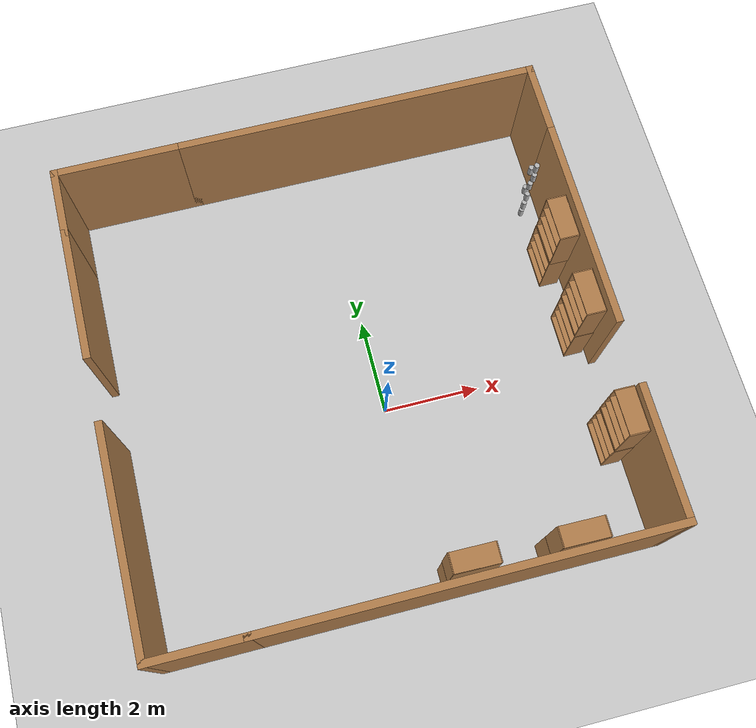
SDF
<sdf version="1.6">
 <world name="default">
  <model name="ground_plane">
   <static>1</static>
   <link name="link">
    <collision name="collision">
     <geometry><plane><normal>0 0 1</normal><size>100 100</size></plane></geometry>
     <surface><friction><ode><mu>100</mu><mu2>50</mu2></ode></friction></surface>
    </collision>
    <visual name="visual">
     <cast_shadows>0</cast_shadows>
     <geometry><plane><normal>0 0 1</normal><size>100 100</size></plane></geometry>
     <material>
      <script><uri>file://media/materials/scripts/gazebo.material</uri><name>Gazebo/Grey</name></script>
     </material>
    </visual>
   </link>
  </model>
  <model name="shopping_mart_box">
   <pose>-0.44063 0.87202 0 0 -0 0</pose>
   <link name="Wall_11">
    <collision name="Wall_11_Collision">
     <geometry><box><size>2 0.15 2.5</size></box></geometry>
     <pose>0 0 1.25 0 -0 0</pose>
    </collision>
    <visual name="Wall_11_Visual">
     <pose>0 0 1.25 0 -0 0</pose>
     <geometry><box><size>2 0.15 2.5</size></box></geometry>
     <material>
      <script><uri>file://media/materials/scripts/gazebo.material</uri><name>Gazebo/Wood</name></script>
      <ambient>1 1 1 1</ambient>
     </material>
    </visual>
    <pose>-4.05 -4.85 0 0 -0 3.14159</pose>
   </link>
   <link name="Wall_12">
    <collision name="Wall_12_Collision">
     <geometry><box><size>4.5 0.15 2.5</size></box></geometry>
     <pose>0 0 1.25 0 -0 0</pose>
    </collision>
    <visual name="Wall_12_Visual">
     <pose>0 0 1.25 0 -0 0</pose>
     <geometry><box><size>4.5 0.15 2.5</size></box></geometry>
     <material>
      <script><uri>file://media/materials/scripts/gazebo.material</uri><name>Gazebo/Wood</name></script>
      <ambient>1 1 1 1</ambient>
     </material>
    </visual>
    <pose>-4.975 -2.675 0 0 -0 1.5708</pose>
   </link>
   <link name="Wall_15">
    <collision name="Wall_15_Collision">
     <geometry><box><size>2.75 0.15 2.5</size></box></geometry>
     <pose>0 0 1.25 0 -0 0</pose>
    </collision>
    <visual name="Wall_15_Visual">
     <pose>0 0 1.25 0 -0 0</pose>
     <geometry><box><size>2.75 0.15 2.5</size></box></geometry>
     <material>
      <script><uri>file://media/materials/scripts/gazebo.material</uri><name>Gazebo/Wood</name></script>
      <ambient>1 1 1 1</ambient>
     </material>
    </visual>
    <pose>-4.975 2.2 0 0 0 -1.5708</pose>
   </link>
   <link name="Wall_17">
    <collision name="Wall_17_Collision">
     <geometry><box><size>1.5 0.15 2.5</size></box></geometry>
     <pose>0 0 1.25 0 -0 0</pose>
    </collision>
    <visual name="Wall_17_Visual">
     <pose>0 0 1.25 0 -0 0</pose>
     <geometry><box><size>1.5 0.15 2.5</size></box></geometry>
     <material>
      <script><uri>file://media/materials/scripts/gazebo.material</uri><name>Gazebo/Wood</name></script>
      <ambient>1 1 1 1</ambient>
     </material>
    </visual>
    <pose>-4.975 4.175 0 0 -0 1.5708</pose>
   </link>
   <link name="Wall_21">
    <collision name="Wall_21_Collision">
     <geometry><box><size>2.75 0.15 2.5</size></box></geometry>
     <pose>0 0 1.25 0 -0 0</pose>
    </collision>
    <visual name="Wall_21_Visual">
     <pose>0 0 1.25 0 -0 0</pose>
     <geometry><box><size>2.75 0.15 2.5</size></box></geometry>
     <material>
      <script><uri>file://media/materials/scripts/gazebo.material</uri><name>Gazebo/Wood</name></script>
      <ambient>1 1 1 1</ambient>
     </material>
    </visual>
    <pose>-3.675 4.85 0 0 -0 0</pose>
   </link>
   <link name="Wall_22">
    <collision name="Wall_22_Collision">
     <geometry><box><size>7.5 0.15 2.5</size></box></geometry>
     <pose>0 0 1.25 0 -0 0</pose>
    </collision>
    <visual name="Wall_22_Visual">
     <pose>0 0 1.25 0 -0 0</pose>
     <geometry><box><size>7.5 0.15 2.5</size></box></geometry>
     <material>
      <script><uri>file://media/materials/scripts/gazebo.material</uri><name>Gazebo/Wood</name></script>
      <ambient>1 1 1 1</ambient>
     </material>
    </visual>
    <pose>1.3 4.85 0 0 -0 0</pose>
   </link>
   <link name="Wall_23">
    <collision name="Wall_23_Collision">
     <geometry><box><size>1.5 0.15 2.5</size></box></geometry>
     <pose>0 0 1.25 0 -0 0</pose>
    </collision>
    <visual name="Wall_23_Visual">
     <pose>0 0 1.25 0 -0 0</pose>
     <geometry><box><size>1.5 0.15 2.5</size></box></geometry>
     <material>
      <script><uri>file://media/materials/scripts/gazebo.material</uri><name>Gazebo/Wood</name></script>
      <ambient>1 1 1 1</ambient>
     </material>
    </visual>
    <pose>4.975 4.175 0 0 0 -1.5708</pose>
   </link>
   <link name="Wall_29">
    <collision name="Wall_29_Collision">
     <geometry><box><size>4.5 0.15 2.5</size></box></geometry>
     <pose>0 0 1.25 0 -0 0</pose>
    </collision>
    <visual name="Wall_29_Visual">
     <pose>0 0 1.25 0 -0 0</pose>
     <geometry><box><size>4.5 0.15 2.5</size></box></geometry>
     <material>
      <script><uri>file://media/materials/scripts/gazebo.material</uri><name>Gazebo/Wood</name></script>
      <ambient>1 1 1 1</ambient>
     </material>
    </visual>
    <pose>4.975 1.325 0 0 0 -1.5708</pose>
   </link>
   <link name="Wall_31">
    <collision name="Wall_31_Collision">
     <geometry><box><size>2.75 0.15 2.5</size></box></geometry>
     <pose>0 0 1.25 0 -0 0</pose>
    </collision>
    <visual name="Wall_31_Visual">
     <pose>0 0 1.25 0 -0 0</pose>
     <geometry><box><size>2.75 0.15 2.5</size></box></geometry>
     <material>
      <script><uri>file://media/materials/scripts/gazebo.material</uri><name>Gazebo/Wood</name></script>
      <ambient>1 1 1 1</ambient>
     </material>
    </visual>
    <pose>4.975 -3.55 0 0 -0 1.5708</pose>
   </link>
   <link name="Wall_6">
    <collision name="Wall_6_Collision">
     <geometry><box><size>8.25 0.15 2.5</size></box></geometry>
     <pose>0 0 1.25 0 -0 0</pose>
    </collision>
    <visual name="Wall_6_Visual">
     <pose>0 0 1.25 0 -0 0</pose>
     <geometry><box><size>8.25 0.15 2.5</size></box></geometry>
     <material>
      <script><uri>file://media/materials/scripts/gazebo.material</uri><name>Gazebo/Wood</name></script>
      <ambient>1 1 1 1</ambient>
     </material>
    </visual>
    <pose>0.925 -4.85 0 0 -0 0</pose>
   </link>
   <static>1</static>
  </model>
  <model name="bookshelf_4_clone_0">
   <static>1</static>
   <link name="link">
    <inertial><mass>1</mass></inertial>
    <collision name="back">
     <pose>0 0.005 0.6 0 -0 0</pose>
     <geometry><box><size>0.9 0.01 1.2</size></box></geometry>
    </collision>
    <visual name="visual1">
     <pose>0 0.005 0.6 0 -0 0</pose>
     <geometry><box><size>0.9 0.01 1.2</size></box></geometry>
     <material>
      <script><uri>file://media/materials/scripts/gazebo.material</uri><name>Gazebo/Wood</name></script>
     </material>
    </visual>
    <collision name="left_side">
     <pose>0.45 -0.195 0.6 0 -0 0</pose>
     <geometry><box><size>0.02 0.4 1.2</size></box></geometry>
    </collision>
    <visual name="visual2">
     <pose>0.45 -0.195 0.6 0 -0 0</pose>
     <geometry><box><size>0.02 0.4 1.2</size></box></geometry>
     <material>
      <script><uri>file://media/materials/scripts/gazebo.material</uri><name>Gazebo/Wood</name></script>
     </material>
    </visual>
    <collision name="right_side">
     <pose>-0.45 -0.195 0.6 0 -0 0</pose>
     <geometry><box><size>0.02 0.4 1.2</size></box></geometry>
    </collision>
    <visual name="visual3">
     <pose>-0.45 -0.195 0.6 0 -0 0</pose>
     <geometry><box><size>0.02 0.4 1.2</size></box></geometry>
     <material>
      <script><uri>file://media/materials/scripts/gazebo.material</uri><name>Gazebo/Wood</name></script>
     </material>
    </visual>
    <collision name="bottom">
     <pose>0 -0.195 0.03 0 -0 0</pose>
     <geometry><box><size>0.88 0.4 0.06</size></box></geometry>
    </collision>
    <visual name="visual4">
     <pose>0 -0.195 0.03 0 -0 0</pose>
     <geometry><box><size>0.88 0.4 0.06</size></box></geometry>
     <material>
      <script><uri>file://media/materials/scripts/gazebo.material</uri><name>Gazebo/Wood</name></script>
     </material>
    </visual>
    <collision name="top">
     <pose>0 -0.195 1.19 0 -0 0</pose>
     <geometry><box><size>0.88 0.4 0.02</size></box></geometry>
    </collision>
    <visual name="visual5">
     <pose>0 -0.195 1.19 0 -0 0</pose>
     <geometry><box><size>0.88 0.4 0.02</size></box></geometry>
     <material>
      <script><uri>file://media/materials/scripts/gazebo.material</uri><name>Gazebo/Wood</name></script>
     </material>
    </visual>
    <collision name="low_shelf">
     <pose>0 -0.195 0.43 0 -0 0</pose>
     <geometry><box><size>0.88 0.4 0.02</size></box></geometry>
    </collision>
    <visual name="visual6">
     <pose>0 -0.195 0.43 0 -0 0</pose>
     <geometry><box><size>0.88 0.4 0.02</size></box></geometry>
     <material>
      <script><uri>file://media/materials/scripts/gazebo.material</uri><name>Gazebo/Wood</name></script>
     </material>
    </visual>
    <collision name="high_shelf">
     <pose>0 -0.195 0.8 0 -0 0</pose>
     <geometry><box><size>0.88 0.4 0.02</size></box></geometry>
    </collision>
    <visual name="visual7">
     <pose>0 -0.195 0.8 0 -0 0</pose>
     <geometry><box><size>0.88 0.4 0.02</size></box></geometry>
     <material>
      <script><uri>file://media/materials/scripts/gazebo.material</uri><name>Gazebo/Wood</name></script>
     </material>
    </visual>
   </link>
   <pose>4.37565 2.36025 0 0 0 -1.5727</pose>
  </model>
  <model name="bookshelf_4_clone_1">
   <static>1</static>
   <link name="link">
    <inertial><mass>1</mass></inertial>
    <collision name="back">
     <pose>0 0.005 0.6 0 -0 0</pose>
     <geometry><box><size>0.9 0.01 1.2</size></box></geometry>
    </collision>
    <visual name="visual1">
     <pose>0 0.005 0.6 0 -0 0</pose>
     <geometry><box><size>0.9 0.01 1.2</size></box></geometry>
     <material>
      <script><uri>file://media/materials/scripts/gazebo.material</uri><name>Gazebo/Wood</name></script>
     </material>
    </visual>
    <collision name="left_side">
     <pose>0.45 -0.195 0.6 0 -0 0</pose>
     <geometry><box><size>0.02 0.4 1.2</size></box></geometry>
    </collision>
    <visual name="visual2">
     <pose>0.45 -0.195 0.6 0 -0 0</pose>
     <geometry><box><size>0.02 0.4 1.2</size></box></geometry>
     <material>
      <script><uri>file://media/materials/scripts/gazebo.material</uri><name>Gazebo/Wood</name></script>
     </material>
    </visual>
    <collision name="right_side">
     <pose>-0.45 -0.195 0.6 0 -0 0</pose>
     <geometry><box><size>0.02 0.4 1.2</size></box></geometry>
    </collision>
    <visual name="visual3">
     <pose>-0.45 -0.195 0.6 0 -0 0</pose>
     <geometry><box><size>0.02 0.4 1.2</size></box></geometry>
     <material>
      <script><uri>file://media/materials/scripts/gazebo.material</uri><name>Gazebo/Wood</name></script>
     </material>
    </visual>
    <collision name="bottom">
     <pose>0 -0.195 0.03 0 -0 0</pose>
     <geometry><box><size>0.88 0.4 0.06</size></box></geometry>
    </collision>
    <visual name="visual4">
     <pose>0 -0.195 0.03 0 -0 0</pose>
     <geometry><box><size>0.88 0.4 0.06</size></box></geometry>
     <material>
      <script><uri>file://media/materials/scripts/gazebo.material</uri><name>Gazebo/Wood</name></script>
     </material>
    </visual>
    <collision name="top">
     <pose>0 -0.195 1.19 0 -0 0</pose>
     <geometry><box><size>0.88 0.4 0.02</size></box></geometry>
    </collision>
    <visual name="visual5">
     <pose>0 -0.195 1.19 0 -0 0</pose>
     <geometry><box><size>0.88 0.4 0.02</size></box></geometry>
     <material>
      <script><uri>file://media/materials/scripts/gazebo.material</uri><name>Gazebo/Wood</name></script>
     </material>
    </visual>
    <collision name="low_shelf">
     <pose>0 -0.195 0.43 0 -0 0</pose>
     <geometry><box><size>0.88 0.4 0.02</size></box></geometry>
    </collision>
    <visual name="visual6">
     <pose>0 -0.195 0.43 0 -0 0</pose>
     <geometry><box><size>0.88 0.4 0.02</size></box></geometry>
     <material>
      <script><uri>file://media/materials/scripts/gazebo.material</uri><name>Gazebo/Wood</name></script>
     </material>
    </visual>
    <collision name="high_shelf">
     <pose>0 -0.195 0.8 0 -0 0</pose>
     <geometry><box><size>0.88 0.4 0.02</size></box></geometry>
    </collision>
    <visual name="visual7">
     <pose>0 -0.195 0.8 0 -0 0</pose>
     <geometry><box><size>0.88 0.4 0.02</size></box></geometry>
     <material>
      <script><uri>file://media/materials/scripts/gazebo.material</uri><name>Gazebo/Wood</name></script>
     </material>
    </visual>
   </link>
   <pose>4.39312 0.69592 0 0 0 -1.5727</pose>
  </model>
  <model name="bookshelf_4_clone_1_clone">
   <static>1</static>
   <link name="link">
    <inertial><mass>1</mass></inertial>
    <collision name="back">
     <pose>0 0.005 0.6 0 -0 0</pose>
     <geometry><box><size>0.9 0.01 1.2</size></box></geometry>
    </collision>
    <visual name="visual1">
     <pose>0 0.005 0.6 0 -0 0</pose>
     <geometry><box><size>0.9 0.01 1.2</size></box></geometry>
     <material>
      <script><uri>file://media/materials/scripts/gazebo.material</uri><name>Gazebo/Wood</name></script>
     </material>
    </visual>
    <collision name="left_side">
     <pose>0.45 -0.195 0.6 0 -0 0</pose>
     <geometry><box><size>0.02 0.4 1.2</size></box></geometry>
    </collision>
    <visual name="visual2">
     <pose>0.45 -0.195 0.6 0 -0 0</pose>
     <geometry><box><size>0.02 0.4 1.2</size></box></geometry>
     <material>
      <script><uri>file://media/materials/scripts/gazebo.material</uri><name>Gazebo/Wood</name></script>
     </material>
    </visual>
    <collision name="right_side">
     <pose>-0.45 -0.195 0.6 0 -0 0</pose>
     <geometry><box><size>0.02 0.4 1.2</size></box></geometry>
    </collision>
    <visual name="visual3">
     <pose>-0.45 -0.195 0.6 0 -0 0</pose>
     <geometry><box><size>0.02 0.4 1.2</size></box></geometry>
     <material>
      <script><uri>file://media/materials/scripts/gazebo.material</uri><name>Gazebo/Wood</name></script>
     </material>
    </visual>
    <collision name="bottom">
     <pose>0 -0.195 0.03 0 -0 0</pose>
     <geometry><box><size>0.88 0.4 0.06</size></box></geometry>
    </collision>
    <visual name="visual4">
     <pose>0 -0.195 0.03 0 -0 0</pose>
     <geometry><box><size>0.88 0.4 0.06</size></box></geometry>
     <material>
      <script><uri>file://media/materials/scripts/gazebo.material</uri><name>Gazebo/Wood</name></script>
     </material>
    </visual>
    <collision name="top">
     <pose>0 -0.195 1.19 0 -0 0</pose>
     <geometry><box><size>0.88 0.4 0.02</size></box></geometry>
    </collision>
    <visual name="visual5">
     <pose>0 -0.195 1.19 0 -0 0</pose>
     <geometry><box><size>0.88 0.4 0.02</size></box></geometry>
     <material>
      <script><uri>file://media/materials/scripts/gazebo.material</uri><name>Gazebo/Wood</name></script>
     </material>
    </visual>
    <collision name="low_shelf">
     <pose>0 -0.195 0.43 0 -0 0</pose>
     <geometry><box><size>0.88 0.4 0.02</size></box></geometry>
    </collision>
    <visual name="visual6">
     <pose>0 -0.195 0.43 0 -0 0</pose>
     <geometry><box><size>0.88 0.4 0.02</size></box></geometry>
     <material>
      <script><uri>file://media/materials/scripts/gazebo.material</uri><name>Gazebo/Wood</name></script>
     </material>
    </visual>
    <collision name="high_shelf">
     <pose>0 -0.195 0.8 0 -0 0</pose>
     <geometry><box><size>0.88 0.4 0.02</size></box></geometry>
    </collision>
    <visual name="visual7">
     <pose>0 -0.195 0.8 0 -0 0</pose>
     <geometry><box><size>0.88 0.4 0.02</size></box></geometry>
     <material>
      <script><uri>file://media/materials/scripts/gazebo.material</uri><name>Gazebo/Wood</name></script>
     </material>
    </visual>
   </link>
   <pose>4.3806 2.34957 1.20741 0 0 -1.5727</pose>
  </model>
  <model name="bookshelf_4_clone_1_clone_clone_0">
   <static>1</static>
   <link name="link">
    <inertial><mass>1</mass></inertial>
    <collision name="back">
     <pose>0 0.005 0.6 0 -0 0</pose>
     <geometry><box><size>0.9 0.01 1.2</size></box></geometry>
    </collision>
    <visual name="visual1">
     <pose>0 0.005 0.6 0 -0 0</pose>
     <geometry><box><size>0.9 0.01 1.2</size></box></geometry>
     <material>
      <script><uri>file://media/materials/scripts/gazebo.material</uri><name>Gazebo/Wood</name></script>
     </material>
    </visual>
    <collision name="left_side">
     <pose>0.45 -0.195 0.6 0 -0 0</pose>
     <geometry><box><size>0.02 0.4 1.2</size></box></geometry>
    </collision>
    <visual name="visual2">
     <pose>0.45 -0.195 0.6 0 -0 0</pose>
     <geometry><box><size>0.02 0.4 1.2</size></box></geometry>
     <material>
      <script><uri>file://media/materials/scripts/gazebo.material</uri><name>Gazebo/Wood</name></script>
     </material>
    </visual>
    <collision name="right_side">
     <pose>-0.45 -0.195 0.6 0 -0 0</pose>
     <geometry><box><size>0.02 0.4 1.2</size></box></geometry>
    </collision>
    <visual name="visual3">
     <pose>-0.45 -0.195 0.6 0 -0 0</pose>
     <geometry><box><size>0.02 0.4 1.2</size></box></geometry>
     <material>
      <script><uri>file://media/materials/scripts/gazebo.material</uri><name>Gazebo/Wood</name></script>
     </material>
    </visual>
    <collision name="bottom">
     <pose>0 -0.195 0.03 0 -0 0</pose>
     <geometry><box><size>0.88 0.4 0.06</size></box></geometry>
    </collision>
    <visual name="visual4">
     <pose>0 -0.195 0.03 0 -0 0</pose>
     <geometry><box><size>0.88 0.4 0.06</size></box></geometry>
     <material>
      <script><uri>file://media/materials/scripts/gazebo.material</uri><name>Gazebo/Wood</name></script>
     </material>
    </visual>
    <collision name="top">
     <pose>0 -0.195 1.19 0 -0 0</pose>
     <geometry><box><size>0.88 0.4 0.02</size></box></geometry>
    </collision>
    <visual name="visual5">
     <pose>0 -0.195 1.19 0 -0 0</pose>
     <geometry><box><size>0.88 0.4 0.02</size></box></geometry>
     <material>
      <script><uri>file://media/materials/scripts/gazebo.material</uri><name>Gazebo/Wood</name></script>
     </material>
    </visual>
    <collision name="low_shelf">
     <pose>0 -0.195 0.43 0 -0 0</pose>
     <geometry><box><size>0.88 0.4 0.02</size></box></geometry>
    </collision>
    <visual name="visual6">
     <pose>0 -0.195 0.43 0 -0 0</pose>
     <geometry><box><size>0.88 0.4 0.02</size></box></geometry>
     <material>
      <script><uri>file://media/materials/scripts/gazebo.material</uri><name>Gazebo/Wood</name></script>
     </material>
    </visual>
    <collision name="high_shelf">
     <pose>0 -0.195 0.8 0 -0 0</pose>
     <geometry><box><size>0.88 0.4 0.02</size></box></geometry>
    </collision>
    <visual name="visual7">
     <pose>0 -0.195 0.8 0 -0 0</pose>
     <geometry><box><size>0.88 0.4 0.02</size></box></geometry>
     <material>
      <script><uri>file://media/materials/scripts/gazebo.material</uri><name>Gazebo/Wood</name></script>
     </material>
    </visual>
   </link>
   <pose>4.38615 0.705306 1.20741 0 0 -1.5727</pose>
  </model>
  <model name="bookshelf_5">
   <static>1</static>
   <link name="link">
    <inertial><mass>1</mass></inertial>
    <collision name="back">
     <pose>0 0.005 0.6 0 -0 0</pose>
     <geometry><box><size>0.9 0.01 1.2</size></box></geometry>
    </collision>
    <visual name="visual1">
     <pose>0 0.005 0.6 0 -0 0</pose>
     <geometry><box><size>0.9 0.01 1.2</size></box></geometry>
     <material>
      <script><uri>file://media/materials/scripts/gazebo.material</uri><name>Gazebo/Wood</name></script>
     </material>
    </visual>
    <collision name="left_side">
     <pose>0.45 -0.195 0.6 0 -0 0</pose>
     <geometry><box><size>0.02 0.4 1.2</size></box></geometry>
    </collision>
    <visual name="visual2">
     <pose>0.45 -0.195 0.6 0 -0 0</pose>
     <geometry><box><size>0.02 0.4 1.2</size></box></geometry>
     <material>
      <script><uri>file://media/materials/scripts/gazebo.material</uri><name>Gazebo/Wood</name></script>
     </material>
    </visual>
    <collision name="right_side">
     <pose>-0.45 -0.195 0.6 0 -0 0</pose>
     <geometry><box><size>0.02 0.4 1.2</size></box></geometry>
    </collision>
    <visual name="visual3">
     <pose>-0.45 -0.195 0.6 0 -0 0</pose>
     <geometry><box><size>0.02 0.4 1.2</size></box></geometry>
     <material>
      <script><uri>file://media/materials/scripts/gazebo.material</uri><name>Gazebo/Wood</name></script>
     </material>
    </visual>
    <collision name="bottom">
     <pose>0 -0.195 0.03 0 -0 0</pose>
     <geometry><box><size>0.88 0.4 0.06</size></box></geometry>
    </collision>
    <visual name="visual4">
     <pose>0 -0.195 0.03 0 -0 0</pose>
     <geometry><box><size>0.88 0.4 0.06</size></box></geometry>
     <material>
      <script><uri>file://media/materials/scripts/gazebo.material</uri><name>Gazebo/Wood</name></script>
     </material>
    </visual>
    <collision name="top">
     <pose>0 -0.195 1.19 0 -0 0</pose>
     <geometry><box><size>0.88 0.4 0.02</size></box></geometry>
    </collision>
    <visual name="visual5">
     <pose>0 -0.195 1.19 0 -0 0</pose>
     <geometry><box><size>0.88 0.4 0.02</size></box></geometry>
     <material>
      <script><uri>file://media/materials/scripts/gazebo.material</uri><name>Gazebo/Wood</name></script>
     </material>
    </visual>
    <collision name="low_shelf">
     <pose>0 -0.195 0.43 0 -0 0</pose>
     <geometry><box><size>0.88 0.4 0.02</size></box></geometry>
    </collision>
    <visual name="visual6">
     <pose>0 -0.195 0.43 0 -0 0</pose>
     <geometry><box><size>0.88 0.4 0.02</size></box></geometry>
     <material>
      <script><uri>file://media/materials/scripts/gazebo.material</uri><name>Gazebo/Wood</name></script>
     </material>
    </visual>
    <collision name="high_shelf">
     <pose>0 -0.195 0.8 0 -0 0</pose>
     <geometry><box><size>0.88 0.4 0.02</size></box></geometry>
    </collision>
    <visual name="visual7">
     <pose>0 -0.195 0.8 0 -0 0</pose>
     <geometry><box><size>0.88 0.4 0.02</size></box></geometry>
     <material>
      <script><uri>file://media/materials/scripts/gazebo.material</uri><name>Gazebo/Wood</name></script>
     </material>
    </visual>
   </link>
   <pose>2.65151 -3.85953 0 0 -0 3.12955</pose>
  </model>
  <model name="bookshelf_5_clone_0">
   <static>1</static>
   <link name="link">
    <inertial><mass>1</mass></inertial>
    <collision name="back">
     <pose>0 0.005 0.6 0 -0 0</pose>
     <geometry><box><size>0.9 0.01 1.2</size></box></geometry>
    </collision>
    <visual name="visual1">
     <pose>0 0.005 0.6 0 -0 0</pose>
     <geometry><box><size>0.9 0.01 1.2</size></box></geometry>
     <material>
      <script><uri>file://media/materials/scripts/gazebo.material</uri><name>Gazebo/Wood</name></script>
     </material>
    </visual>
    <collision name="left_side">
     <pose>0.45 -0.195 0.6 0 -0 0</pose>
     <geometry><box><size>0.02 0.4 1.2</size></box></geometry>
    </collision>
    <visual name="visual2">
     <pose>0.45 -0.195 0.6 0 -0 0</pose>
     <geometry><box><size>0.02 0.4 1.2</size></box></geometry>
     <material>
      <script><uri>file://media/materials/scripts/gazebo.material</uri><name>Gazebo/Wood</name></script>
     </material>
    </visual>
    <collision name="right_side">
     <pose>-0.45 -0.195 0.6 0 -0 0</pose>
     <geometry><box><size>0.02 0.4 1.2</size></box></geometry>
    </collision>
    <visual name="visual3">
     <pose>-0.45 -0.195 0.6 0 -0 0</pose>
     <geometry><box><size>0.02 0.4 1.2</size></box></geometry>
     <material>
      <script><uri>file://media/materials/scripts/gazebo.material</uri><name>Gazebo/Wood</name></script>
     </material>
    </visual>
    <collision name="bottom">
     <pose>0 -0.195 0.03 0 -0 0</pose>
     <geometry><box><size>0.88 0.4 0.06</size></box></geometry>
    </collision>
    <visual name="visual4">
     <pose>0 -0.195 0.03 0 -0 0</pose>
     <geometry><box><size>0.88 0.4 0.06</size></box></geometry>
     <material>
      <script><uri>file://media/materials/scripts/gazebo.material</uri><name>Gazebo/Wood</name></script>
     </material>
    </visual>
    <collision name="top">
     <pose>0 -0.195 1.19 0 -0 0</pose>
     <geometry><box><size>0.88 0.4 0.02</size></box></geometry>
    </collision>
    <visual name="visual5">
     <pose>0 -0.195 1.19 0 -0 0</pose>
     <geometry><box><size>0.88 0.4 0.02</size></box></geometry>
     <material>
      <script><uri>file://media/materials/scripts/gazebo.material</uri><name>Gazebo/Wood</name></script>
     </material>
    </visual>
    <collision name="low_shelf">
     <pose>0 -0.195 0.43 0 -0 0</pose>
     <geometry><box><size>0.88 0.4 0.02</size></box></geometry>
    </collision>
    <visual name="visual6">
     <pose>0 -0.195 0.43 0 -0 0</pose>
     <geometry><box><size>0.88 0.4 0.02</size></box></geometry>
     <material>
      <script><uri>file://media/materials/scripts/gazebo.material</uri><name>Gazebo/Wood</name></script>
     </material>
    </visual>
    <collision name="high_shelf">
     <pose>0 -0.195 0.8 0 -0 0</pose>
     <geometry><box><size>0.88 0.4 0.02</size></box></geometry>
    </collision>
    <visual name="visual7">
     <pose>0 -0.195 0.8 0 -0 0</pose>
     <geometry><box><size>0.88 0.4 0.02</size></box></geometry>
     <material>
      <script><uri>file://media/materials/scripts/gazebo.material</uri><name>Gazebo/Wood</name></script>
     </material>
    </visual>
   </link>
   <pose>0.624398 -3.83719 0 0 -0 3.12955</pose>
  </model>
  <model name="bookshelf_5_clone">
   <static>1</static>
   <link name="link">
    <inertial><mass>1</mass></inertial>
    <collision name="back">
     <pose>0 0.005 0.6 0 -0 0</pose>
     <geometry><box><size>0.9 0.01 1.2</size></box></geometry>
    </collision>
    <visual name="visual1">
     <pose>0 0.005 0.6 0 -0 0</pose>
     <geometry><box><size>0.9 0.01 1.2</size></box></geometry>
     <material>
      <script><uri>file://media/materials/scripts/gazebo.material</uri><name>Gazebo/Wood</name></script>
     </material>
    </visual>
    <collision name="left_side">
     <pose>0.45 -0.195 0.6 0 -0 0</pose>
     <geometry><box><size>0.02 0.4 1.2</size></box></geometry>
    </collision>
    <visual name="visual2">
     <pose>0.45 -0.195 0.6 0 -0 0</pose>
     <geometry><box><size>0.02 0.4 1.2</size></box></geometry>
     <material>
      <script><uri>file://media/materials/scripts/gazebo.material</uri><name>Gazebo/Wood</name></script>
     </material>
    </visual>
    <collision name="right_side">
     <pose>-0.45 -0.195 0.6 0 -0 0</pose>
     <geometry><box><size>0.02 0.4 1.2</size></box></geometry>
    </collision>
    <visual name="visual3">
     <pose>-0.45 -0.195 0.6 0 -0 0</pose>
     <geometry><box><size>0.02 0.4 1.2</size></box></geometry>
     <material>
      <script><uri>file://media/materials/scripts/gazebo.material</uri><name>Gazebo/Wood</name></script>
     </material>
    </visual>
    <collision name="bottom">
     <pose>0 -0.195 0.03 0 -0 0</pose>
     <geometry><box><size>0.88 0.4 0.06</size></box></geometry>
    </collision>
    <visual name="visual4">
     <pose>0 -0.195 0.03 0 -0 0</pose>
     <geometry><box><size>0.88 0.4 0.06</size></box></geometry>
     <material>
      <script><uri>file://media/materials/scripts/gazebo.material</uri><name>Gazebo/Wood</name></script>
     </material>
    </visual>
    <collision name="top">
     <pose>0 -0.195 1.19 0 -0 0</pose>
     <geometry><box><size>0.88 0.4 0.02</size></box></geometry>
    </collision>
    <visual name="visual5">
     <pose>0 -0.195 1.19 0 -0 0</pose>
     <geometry><box><size>0.88 0.4 0.02</size></box></geometry>
     <material>
      <script><uri>file://media/materials/scripts/gazebo.material</uri><name>Gazebo/Wood</name></script>
     </material>
    </visual>
    <collision name="low_shelf">
     <pose>0 -0.195 0.43 0 -0 0</pose>
     <geometry><box><size>0.88 0.4 0.02</size></box></geometry>
    </collision>
    <visual name="visual6">
     <pose>0 -0.195 0.43 0 -0 0</pose>
     <geometry><box><size>0.88 0.4 0.02</size></box></geometry>
     <material>
      <script><uri>file://media/materials/scripts/gazebo.material</uri><name>Gazebo/Wood</name></script>
     </material>
    </visual>
    <collision name="high_shelf">
     <pose>0 -0.195 0.8 0 -0 0</pose>
     <geometry><box><size>0.88 0.4 0.02</size></box></geometry>
    </collision>
    <visual name="visual7">
     <pose>0 -0.195 0.8 0 -0 0</pose>
     <geometry><box><size>0.88 0.4 0.02</size></box></geometry>
     <material>
      <script><uri>file://media/materials/scripts/gazebo.material</uri><name>Gazebo/Wood</name></script>
     </material>
    </visual>
   </link>
   <pose>2.64795 -3.86432 1.21139 0 -0 3.12955</pose>
  </model>
  <model name="bookshelf_5_clone_clone">
   <static>1</static>
   <link name="link">
    <inertial><mass>1</mass></inertial>
    <collision name="back">
     <pose>0 0.005 0.6 0 -0 0</pose>
     <geometry><box><size>0.9 0.01 1.2</size></box></geometry>
    </collision>
    <visual name="visual1">
     <pose>0 0.005 0.6 0 -0 0</pose>
     <geometry><box><size>0.9 0.01 1.2</size></box></geometry>
     <material>
      <script><uri>file://media/materials/scripts/gazebo.material</uri><name>Gazebo/Wood</name></script>
     </material>
    </visual>
    <collision name="left_side">
     <pose>0.45 -0.195 0.6 0 -0 0</pose>
     <geometry><box><size>0.02 0.4 1.2</size></box></geometry>
    </collision>
    <visual name="visual2">
     <pose>0.45 -0.195 0.6 0 -0 0</pose>
     <geometry><box><size>0.02 0.4 1.2</size></box></geometry>
     <material>
      <script><uri>file://media/materials/scripts/gazebo.material</uri><name>Gazebo/Wood</name></script>
     </material>
    </visual>
    <collision name="right_side">
     <pose>-0.45 -0.195 0.6 0 -0 0</pose>
     <geometry><box><size>0.02 0.4 1.2</size></box></geometry>
    </collision>
    <visual name="visual3">
     <pose>-0.45 -0.195 0.6 0 -0 0</pose>
     <geometry><box><size>0.02 0.4 1.2</size></box></geometry>
     <material>
      <script><uri>file://media/materials/scripts/gazebo.material</uri><name>Gazebo/Wood</name></script>
     </material>
    </visual>
    <collision name="bottom">
     <pose>0 -0.195 0.03 0 -0 0</pose>
     <geometry><box><size>0.88 0.4 0.06</size></box></geometry>
    </collision>
    <visual name="visual4">
     <pose>0 -0.195 0.03 0 -0 0</pose>
     <geometry><box><size>0.88 0.4 0.06</size></box></geometry>
     <material>
      <script><uri>file://media/materials/scripts/gazebo.material</uri><name>Gazebo/Wood</name></script>
     </material>
    </visual>
    <collision name="top">
     <pose>0 -0.195 1.19 0 -0 0</pose>
     <geometry><box><size>0.88 0.4 0.02</size></box></geometry>
    </collision>
    <visual name="visual5">
     <pose>0 -0.195 1.19 0 -0 0</pose>
     <geometry><box><size>0.88 0.4 0.02</size></box></geometry>
     <material>
      <script><uri>file://media/materials/scripts/gazebo.material</uri><name>Gazebo/Wood</name></script>
     </material>
    </visual>
    <collision name="low_shelf">
     <pose>0 -0.195 0.43 0 -0 0</pose>
     <geometry><box><size>0.88 0.4 0.02</size></box></geometry>
    </collision>
    <visual name="visual6">
     <pose>0 -0.195 0.43 0 -0 0</pose>
     <geometry><box><size>0.88 0.4 0.02</size></box></geometry>
     <material>
      <script><uri>file://media/materials/scripts/gazebo.material</uri><name>Gazebo/Wood</name></script>
     </material>
    </visual>
    <collision name="high_shelf">
     <pose>0 -0.195 0.8 0 -0 0</pose>
     <geometry><box><size>0.88 0.4 0.02</size></box></geometry>
    </collision>
    <visual name="visual7">
     <pose>0 -0.195 0.8 0 -0 0</pose>
     <geometry><box><size>0.88 0.4 0.02</size></box></geometry>
     <material>
      <script><uri>file://media/materials/scripts/gazebo.material</uri><name>Gazebo/Wood</name></script>
     </material>
    </visual>
   </link>
   <pose>0.620317 -3.82873 1.21139 0 -0 3.12955</pose>
  </model>
  <model name="bookshelf_4_clone_clone">
   <static>1</static>
   <link name="link">
    <inertial><mass>1</mass></inertial>
    <collision name="back">
     <pose>0 0.005 0.6 0 -0 0</pose>
     <geometry><box><size>0.9 0.01 1.2</size></box></geometry>
    </collision>
    <visual name="visual1">
     <pose>0 0.005 0.6 0 -0 0</pose>
     <geometry><box><size>0.9 0.01 1.2</size></box></geometry>
     <material>
      <script><uri>file://media/materials/scripts/gazebo.material</uri><name>Gazebo/Wood</name></script>
     </material>
    </visual>
    <collision name="left_side">
     <pose>0.45 -0.195 0.6 0 -0 0</pose>
     <geometry><box><size>0.02 0.4 1.2</size></box></geometry>
    </collision>
    <visual name="visual2">
     <pose>0.45 -0.195 0.6 0 -0 0</pose>
     <geometry><box><size>0.02 0.4 1.2</size></box></geometry>
     <material>
      <script><uri>file://media/materials/scripts/gazebo.material</uri><name>Gazebo/Wood</name></script>
     </material>
    </visual>
    <collision name="right_side">
     <pose>-0.45 -0.195 0.6 0 -0 0</pose>
     <geometry><box><size>0.02 0.4 1.2</size></box></geometry>
    </collision>
    <visual name="visual3">
     <pose>-0.45 -0.195 0.6 0 -0 0</pose>
     <geometry><box><size>0.02 0.4 1.2</size></box></geometry>
     <material>
      <script><uri>file://media/materials/scripts/gazebo.material</uri><name>Gazebo/Wood</name></script>
     </material>
    </visual>
    <collision name="bottom">
     <pose>0 -0.195 0.03 0 -0 0</pose>
     <geometry><box><size>0.88 0.4 0.06</size></box></geometry>
    </collision>
    <visual name="visual4">
     <pose>0 -0.195 0.03 0 -0 0</pose>
     <geometry><box><size>0.88 0.4 0.06</size></box></geometry>
     <material>
      <script><uri>file://media/materials/scripts/gazebo.material</uri><name>Gazebo/Wood</name></script>
     </material>
    </visual>
    <collision name="top">
     <pose>0 -0.195 1.19 0 -0 0</pose>
     <geometry><box><size>0.88 0.4 0.02</size></box></geometry>
    </collision>
    <visual name="visual5">
     <pose>0 -0.195 1.19 0 -0 0</pose>
     <geometry><box><size>0.88 0.4 0.02</size></box></geometry>
     <material>
      <script><uri>file://media/materials/scripts/gazebo.material</uri><name>Gazebo/Wood</name></script>
     </material>
    </visual>
    <collision name="low_shelf">
     <pose>0 -0.195 0.43 0 -0 0</pose>
     <geometry><box><size>0.88 0.4 0.02</size></box></geometry>
    </collision>
    <visual name="visual6">
     <pose>0 -0.195 0.43 0 -0 0</pose>
     <geometry><box><size>0.88 0.4 0.02</size></box></geometry>
     <material>
      <script><uri>file://media/materials/scripts/gazebo.material</uri><name>Gazebo/Wood</name></script>
     </material>
    </visual>
    <collision name="high_shelf">
     <pose>0 -0.195 0.8 0 -0 0</pose>
     <geometry><box><size>0.88 0.4 0.02</size></box></geometry>
    </collision>
    <visual name="visual7">
     <pose>0 -0.195 0.8 0 -0 0</pose>
     <geometry><box><size>0.88 0.4 0.02</size></box></geometry>
     <material>
      <script><uri>file://media/materials/scripts/gazebo.material</uri><name>Gazebo/Wood</name></script>
     </material>
    </visual>
   </link>
   <pose>4.40573 -1.76165 0 0 0 -1.5727</pose>
  </model>
  <model name="bookshelf_4_clone_1_clone_clone_clone">
   <static>1</static>
   <link name="link">
    <inertial><mass>1</mass></inertial>
    <collision name="back">
     <pose>0 0.005 0.6 0 -0 0</pose>
     <geometry><box><size>0.9 0.01 1.2</size></box></geometry>
    </collision>
    <visual name="visual1">
     <pose>0 0.005 0.6 0 -0 0</pose>
     <geometry><box><size>0.9 0.01 1.2</size></box></geometry>
     <material>
      <script><uri>file://media/materials/scripts/gazebo.material</uri><name>Gazebo/Wood</name></script>
     </material>
    </visual>
    <collision name="left_side">
     <pose>0.45 -0.195 0.6 0 -0 0</pose>
     <geometry><box><size>0.02 0.4 1.2</size></box></geometry>
    </collision>
    <visual name="visual2">
     <pose>0.45 -0.195 0.6 0 -0 0</pose>
     <geometry><box><size>0.02 0.4 1.2</size></box></geometry>
     <material>
      <script><uri>file://media/materials/scripts/gazebo.material</uri><name>Gazebo/Wood</name></script>
     </material>
    </visual>
    <collision name="right_side">
     <pose>-0.45 -0.195 0.6 0 -0 0</pose>
     <geometry><box><size>0.02 0.4 1.2</size></box></geometry>
    </collision>
    <visual name="visual3">
     <pose>-0.45 -0.195 0.6 0 -0 0</pose>
     <geometry><box><size>0.02 0.4 1.2</size></box></geometry>
     <material>
      <script><uri>file://media/materials/scripts/gazebo.material</uri><name>Gazebo/Wood</name></script>
     </material>
    </visual>
    <collision name="bottom">
     <pose>0 -0.195 0.03 0 -0 0</pose>
     <geometry><box><size>0.88 0.4 0.06</size></box></geometry>
    </collision>
    <visual name="visual4">
     <pose>0 -0.195 0.03 0 -0 0</pose>
     <geometry><box><size>0.88 0.4 0.06</size></box></geometry>
     <material>
      <script><uri>file://media/materials/scripts/gazebo.material</uri><name>Gazebo/Wood</name></script>
     </material>
    </visual>
    <collision name="top">
     <pose>0 -0.195 1.19 0 -0 0</pose>
     <geometry><box><size>0.88 0.4 0.02</size></box></geometry>
    </collision>
    <visual name="visual5">
     <pose>0 -0.195 1.19 0 -0 0</pose>
     <geometry><box><size>0.88 0.4 0.02</size></box></geometry>
     <material>
      <script><uri>file://media/materials/scripts/gazebo.material</uri><name>Gazebo/Wood</name></script>
     </material>
    </visual>
    <collision name="low_shelf">
     <pose>0 -0.195 0.43 0 -0 0</pose>
     <geometry><box><size>0.88 0.4 0.02</size></box></geometry>
    </collision>
    <visual name="visual6">
     <pose>0 -0.195 0.43 0 -0 0</pose>
     <geometry><box><size>0.88 0.4 0.02</size></box></geometry>
     <material>
      <script><uri>file://media/materials/scripts/gazebo.material</uri><name>Gazebo/Wood</name></script>
     </material>
    </visual>
    <collision name="high_shelf">
     <pose>0 -0.195 0.8 0 -0 0</pose>
     <geometry><box><size>0.88 0.4 0.02</size></box></geometry>
    </collision>
    <visual name="visual7">
     <pose>0 -0.195 0.8 0 -0 0</pose>
     <geometry><box><size>0.88 0.4 0.02</size></box></geometry>
     <material>
      <script><uri>file://media/materials/scripts/gazebo.material</uri><name>Gazebo/Wood</name></script>
     </material>
    </visual>
   </link>
   <pose>4.40422 -1.75184 1.20741 0 0 -1.5727</pose>
  </model>
  <model name="beer_clone_clone_clone_2">
   <link name="link">
    <pose>0 0 0.115 0 -0 0</pose>
    <inertial>
     <mass>0.39</mass>
     <inertia><ixx>0.00058</ixx><ixy>0</ixy><ixz>0</ixz><iyy>0.00058</iyy><iyz>0</iyz><izz>0.00019</izz></inertia>
    </inertial>
    <collision name="collision">
     <geometry><cylinder><radius>0.055</radius><length>0.23</length></cylinder></geometry>
    </collision>
    <visual name="visual">
     <geometry><cylinder><radius>0.055</radius><length>0.23</length></cylinder></geometry>
     <material>
      <script>
       <uri>model://beer/materials/scripts</uri>
       <uri>model://beer/materials/textures</uri>
       <name>Beer/Diffuse</name>
      </script>
     </material>
    </visual>
   </link>
   <pose>4.08219 3.66775 0.059991 9e-06 -1.2e-05 -1.51067</pose>
  </model>
  <model name="beer_clone_clone_clone_3_clone_clone_2">
   <link name="link">
    <pose>0 0 0.115 0 -0 0</pose>
    <inertial>
     <mass>0.39</mass>
     <inertia><ixx>0.00058</ixx><ixy>0</ixy><ixz>0</ixz><iyy>0.00058</iyy><iyz>0</iyz><izz>0.00019</izz></inertia>
    </inertial>
    <collision name="collision">
     <geometry><cylinder><radius>0.055</radius><length>0.23</length></cylinder></geometry>
    </collision>
    <visual name="visual">
     <geometry><cylinder><radius>0.055</radius><length>0.23</length></cylinder></geometry>
     <material>
      <script>
       <uri>model://beer/materials/scripts</uri>
       <uri>model://beer/materials/textures</uri>
       <name>Beer/Diffuse</name>
      </script>
     </material>
    </visual>
   </link>
   <pose>4.07354 3.64588 0.439992 1.7e-05 -2.3e-05 -1.48507</pose>
  </model>
  <model name="beer_clone_clone_clone_3_clone_clone_clone_clone_1">
   <link name="link">
    <pose>0 0 0.115 0 -0 0</pose>
    <inertial>
     <mass>0.39</mass>
     <inertia><ixx>0.00058</ixx><ixy>0</ixy><ixz>0</ixz><iyy>0.00058</iyy><iyz>0</iyz><izz>0.00019</izz></inertia>
    </inertial>
    <collision name="collision">
     <geometry><cylinder><radius>0.055</radius><length>0.23</length></cylinder></geometry>
    </collision>
    <visual name="visual">
     <geometry><cylinder><radius>0.055</radius><length>0.23</length></cylinder></geometry>
     <material>
      <script>
       <uri>model://beer/materials/scripts</uri>
       <uri>model://beer/materials/textures</uri>
       <name>Beer/Diffuse</name>
      </script>
     </material>
    </visual>
   </link>
   <pose>4.09173 3.81825 0.810001 -7e-06 1.5e-05 -1.49941</pose>
  </model>
  <model name="beer_clone_clone_clone_3_clone_clone_clone_clone_2">
   <link name="link">
    <pose>0 0 0.115 0 -0 0</pose>
    <inertial>
     <mass>0.39</mass>
     <inertia><ixx>0.00058</ixx><ixy>0</ixy><ixz>0</ixz><iyy>0.00058</iyy><iyz>0</iyz><izz>0.00019</izz></inertia>
    </inertial>
    <collision name="collision">
     <geometry><cylinder><radius>0.055</radius><length>0.23</length></cylinder></geometry>
    </collision>
    <visual name="visual">
     <geometry><cylinder><radius>0.055</radius><length>0.23</length></cylinder></geometry>
     <material>
      <script>
       <uri>model://beer/materials/scripts</uri>
       <uri>model://beer/materials/textures</uri>
       <name>Beer/Diffuse</name>
      </script>
     </material>
    </visual>
   </link>
   <pose>4.08289 3.65081 0.81 0 -5e-06 -1.48673</pose>
  </model>
  <model name="beer_clone_clone_clone_3_clone_clone_clone_clone_2_clone_0_clone">
   <link name="link">
    <pose>0 0 0.115 0 -0 0</pose>
    <inertial>
     <mass>0.39</mass>
     <inertia><ixx>0.00058</ixx><ixy>0</ixy><ixz>0</ixz><iyy>0.00058</iyy><iyz>0</iyz><izz>0.00019</izz></inertia>
    </inertial>
    <collision name="collision">
     <geometry><cylinder><radius>0.055</radius><length>0.23</length></cylinder></geometry>
    </collision>
    <visual name="visual">
     <geometry><cylinder><radius>0.055</radius><length>0.23</length></cylinder></geometry>
     <material>
      <script>
       <uri>model://beer/materials/scripts</uri>
       <uri>model://beer/materials/textures</uri>
       <name>Beer/Diffuse</name>
      </script>
     </material>
    </visual>
   </link>
   <pose>4.07772 3.66485 1.2674 1.1e-05 1.8e-05 -1.50084</pose>
  </model>
  <model name="beer_clone_clone_clone_3_clone_clone_clone_clone_2_clone_0_clone_1">
   <link name="link">
    <pose>0 0 0.115 0 -0 0</pose>
    <inertial>
     <mass>0.39</mass>
     <inertia><ixx>0.00058</ixx><ixy>0</ixy><ixz>0</ixz><iyy>0.00058</iyy><iyz>0</iyz><izz>0.00019</izz></inertia>
    </inertial>
    <collision name="collision">
     <geometry><cylinder><radius>0.055</radius><length>0.23</length></cylinder></geometry>
    </collision>
    <visual name="visual">
     <geometry><cylinder><radius>0.055</radius><length>0.23</length></cylinder></geometry>
     <material>
      <script>
       <uri>model://beer/materials/scripts</uri>
       <uri>model://beer/materials/textures</uri>
       <name>Beer/Diffuse</name>
      </script>
     </material>
    </visual>
   </link>
   <pose>4.09598 3.64971 1.64741 -5e-06 1.4e-05 -1.49273</pose>
  </model>
  <model name="beer_clone_clone_clone_3_clone_clone_clone_clone_2_clone_0_clone_0_clone_clone">
   <link name="link">
    <pose>0 0 0.115 0 -0 0</pose>
    <inertial>
     <mass>0.39</mass>
     <inertia><ixx>0.00058</ixx><ixy>0</ixy><ixz>0</ixz><iyy>0.00058</iyy><iyz>0</iyz><izz>0.00019</izz></inertia>
    </inertial>
    <collision name="collision">
     <geometry><cylinder><radius>0.055</radius><length>0.23</length></cylinder></geometry>
    </collision>
    <visual name="visual">
     <geometry><cylinder><radius>0.055</radius><length>0.23</length></cylinder></geometry>
     <material>
      <script>
       <uri>model://beer/materials/scripts</uri>
       <uri>model://beer/materials/textures</uri>
       <name>Beer/Diffuse</name>
      </script>
     </material>
    </visual>
   </link>
   <pose>4.08428 3.82043 1.6474 2.4e-05 1.3e-05 -1.4981</pose>
  </model>
  <model name="beer_clone_clone_clone_3_clone_clone_clone_clone_2_clone_0_clone_0_clone_0_clone_0">
   <link name="link">
    <pose>0 0 0.115 0 -0 0</pose>
    <inertial>
     <mass>0.39</mass>
     <inertia><ixx>0.00058</ixx><ixy>0</ixy><ixz>0</ixz><iyy>0.00058</iyy><iyz>0</iyz><izz>0.00019</izz></inertia>
    </inertial>
    <collision name="collision">
     <geometry><cylinder><radius>0.055</radius><length>0.23</length></cylinder></geometry>
    </collision>
    <visual name="visual">
     <geometry><cylinder><radius>0.055</radius><length>0.23</length></cylinder></geometry>
     <material>
      <script>
       <uri>model://beer/materials/scripts</uri>
       <uri>model://beer/materials/textures</uri>
       <name>Beer/Diffuse</name>
      </script>
     </material>
    </visual>
   </link>
   <pose>4.08678 3.65455 2.0174 0 0 -1.48976</pose>
  </model>
 </world>
</sdf>
